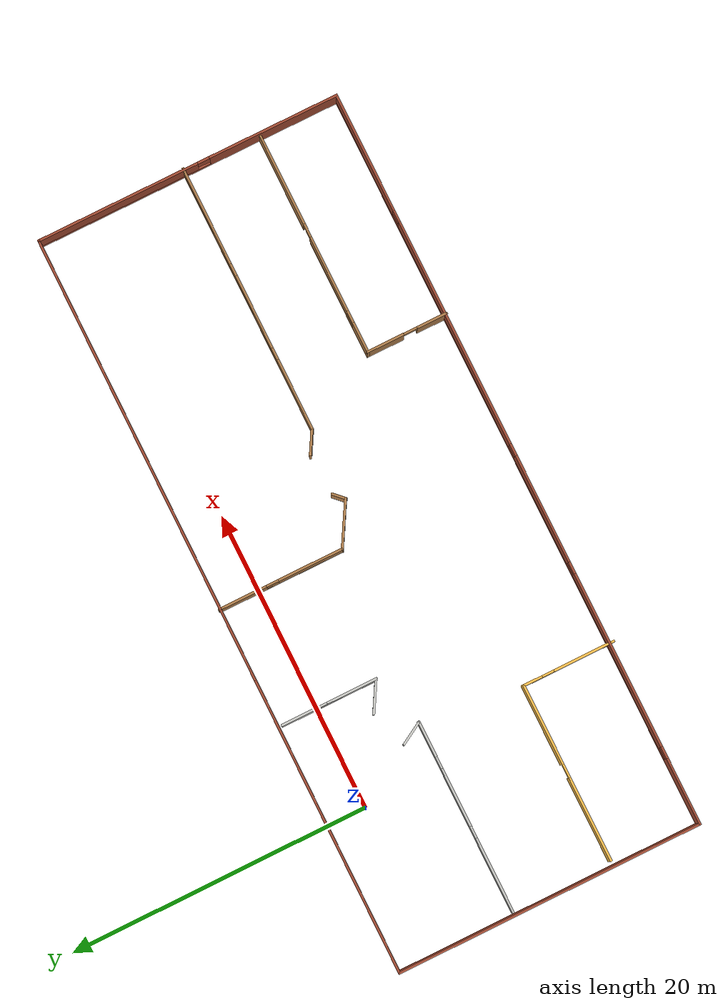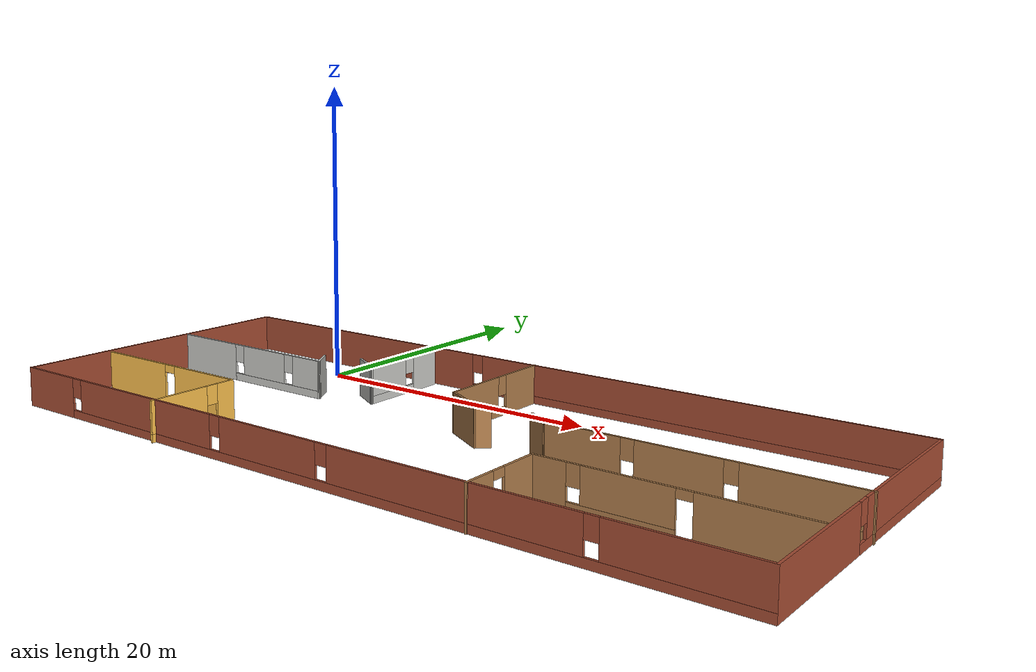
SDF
<?xml version='1.0'?>
<sdf version='1.6'>
  <model name='featured_plan'>
    <pose frame=''>15.1053 -7.69191 0 0 -0 0</pose>
    <link name='Wall_11'>
      <pose frame=''>24.8859 0.103932 0 0 -0 1.5708</pose>
      <visual name='Wall_11_Visual_0'>
        <pose frame=''>-5.85687 0 1.25 0 -0 0</pose>
        <geometry>
          <box>
            <size>8.78627 0.15 2.5</size>
          </box>
        </geometry>
        <material>
          <script>
            <uri>file://media/materials/scripts/gazebo.material</uri>
            <name>Gazebo/Bricks</name>
          </script>
          <ambient>1 1 1 1</ambient>
        </material>
        <meta>
          <layer>0</layer>
        </meta>
      </visual>
      <collision name='Wall_11_Collision_0'>
        <geometry>
          <box>
            <size>8.78627 0.15 2.5</size>
          </box>
        </geometry>
        <pose frame=''>-5.85687 0 1.25 0 -0 0</pose>
      </collision>
      <visual name='Wall_11_Visual_1'>
        <pose frame=''>4.39313 0 0.25 0 -0 0</pose>
        <geometry>
          <box>
            <size>11.7137 0.15 0.5</size>
          </box>
        </geometry>
        <material>
          <script>
            <uri>file://media/materials/scripts/gazebo.material</uri>
            <name>Gazebo/Bricks</name>
          </script>
          <ambient>1 1 1 1</ambient>
        </material>
        <meta>
          <layer>0</layer>
        </meta>
      </visual>
      <collision name='Wall_11_Collision_1'>
        <geometry>
          <box>
            <size>11.7137 0.15 0.5</size>
          </box>
        </geometry>
        <pose frame=''>4.39313 0 0.25 0 -0 0</pose>
      </collision>
      <visual name='Wall_11_Visual_2'>
        <pose frame=''>4.79313 0 1.5 0 -0 0</pose>
        <geometry>
          <box>
            <size>10.9137 0.15 2</size>
          </box>
        </geometry>
        <material>
          <script>
            <uri>file://media/materials/scripts/gazebo.material</uri>
            <name>Gazebo/Bricks</name>
          </script>
          <ambient>1 1 1 1</ambient>
        </material>
        <meta>
          <layer>0</layer>
        </meta>
      </visual>
      <collision name='Wall_11_Collision_2'>
        <geometry>
          <box>
            <size>10.9137 0.15 2</size>
          </box>
        </geometry>
        <pose frame=''>4.79313 0 1.5 0 -0 0</pose>
      </collision>
      <visual name='Wall_11_Visual_3'>
        <pose frame=''>-1.06373 0 1.9 0 -0 0</pose>
        <geometry>
          <box>
            <size>0.8 0.15 1.2</size>
          </box>
        </geometry>
        <material>
          <script>
            <uri>file://media/materials/scripts/gazebo.material</uri>
            <name>Gazebo/Bricks</name>
          </script>
          <ambient>1 1 1 1</ambient>
        </material>
        <meta>
          <layer>0</layer>
        </meta>
      </visual>
      <collision name='Wall_11_Collision_3'>
        <geometry>
          <box>
            <size>0.8 0.15 1.2</size>
          </box>
        </geometry>
        <pose frame=''>-1.06373 0 1.9 0 -0 0</pose>
      </collision>
    </link>
    <link name='Wall_13'>
      <pose frame=''>-8.34671 6.83078 0 0 0 -1.5708</pose>
      <visual name='Wall_13_Visual_0'>
        <pose frame=''>-2.10318 0 1.25 0 -0 0</pose>
        <geometry>
          <box>
            <size>2.29365 0.15 2.5</size>
          </box>
        </geometry>
        <material>
          <script>
            <uri>file://media/materials/scripts/gazebo.material</uri>
            <name>Gazebo/CeilingTiled</name>
          </script>
          <ambient>0.996078 0.47451 0.0196078 1</ambient>
        </material>
        <meta>
          <layer>0</layer>
        </meta>
      </visual>
      <collision name='Wall_13_Collision_0'>
        <geometry>
          <box>
            <size>2.29365 0.15 2.5</size>
          </box>
        </geometry>
        <pose frame=''>-2.10318 0 1.25 0 -0 0</pose>
      </collision>
      <visual name='Wall_13_Visual_1'>
        <pose frame=''>1.14682 0 0.25 0 -0 0</pose>
        <geometry>
          <box>
            <size>4.20635 0.15 0.5</size>
          </box>
        </geometry>
        <material>
          <script>
            <uri>file://media/materials/scripts/gazebo.material</uri>
            <name>Gazebo/CeilingTiled</name>
          </script>
          <ambient>0.996078 0.47451 0.0196078 1</ambient>
        </material>
        <meta>
          <layer>0</layer>
        </meta>
      </visual>
      <collision name='Wall_13_Collision_1'>
        <geometry>
          <box>
            <size>4.20635 0.15 0.5</size>
          </box>
        </geometry>
        <pose frame=''>1.14682 0 0.25 0 -0 0</pose>
      </collision>
      <visual name='Wall_13_Visual_2'>
        <pose frame=''>1.54682 0 1.5 0 -0 0</pose>
        <geometry>
          <box>
            <size>3.40635 0.15 2</size>
          </box>
        </geometry>
        <material>
          <script>
            <uri>file://media/materials/scripts/gazebo.material</uri>
            <name>Gazebo/CeilingTiled</name>
          </script>
          <ambient>0.996078 0.47451 0.0196078 1</ambient>
        </material>
        <meta>
          <layer>0</layer>
        </meta>
      </visual>
      <collision name='Wall_13_Collision_2'>
        <geometry>
          <box>
            <size>3.40635 0.15 2</size>
          </box>
        </geometry>
        <pose frame=''>1.54682 0 1.5 0 -0 0</pose>
      </collision>
      <visual name='Wall_13_Visual_3'>
        <pose frame=''>-0.556354 0 1.9 0 -0 0</pose>
        <geometry>
          <box>
            <size>0.8 0.15 1.2</size>
          </box>
        </geometry>
        <material>
          <script>
            <uri>file://media/materials/scripts/gazebo.material</uri>
            <name>Gazebo/CeilingTiled</name>
          </script>
          <ambient>0.996078 0.47451 0.0196078 1</ambient>
        </material>
        <meta>
          <layer>0</layer>
        </meta>
      </visual>
      <collision name='Wall_13_Collision_3'>
        <geometry>
          <box>
            <size>0.8 0.15 1.2</size>
          </box>
        </geometry>
        <pose frame=''>-0.556354 0 1.9 0 -0 0</pose>
      </collision>
    </link>
    <link name='Wall_14'>
      <collision name='Wall_14_Collision'>
        <geometry>
          <box>
            <size>2.25 0.15 2.5</size>
          </box>
        </geometry>
        <pose frame=''>0 0 1.25 0 -0 0</pose>
      </collision>
      <visual name='Wall_14_Visual'>
        <pose frame=''>0 0 1.25 0 -0 0</pose>
        <geometry>
          <box>
            <size>2.25 0.15 2.5</size>
          </box>
        </geometry>
        <material>
          <script>
            <uri>file://media/materials/scripts/gazebo.material</uri>
            <name>Gazebo/CeilingTiled</name>
          </script>
          <ambient>0.921569 0.807843 0.615686 1</ambient>
        </material>
        <meta>
          <layer>0</layer>
        </meta>
      </visual>
      <pose frame=''>-9.25604 4.18078 0 0 -0 2.61799</pose>
    </link>
    <link name='Wall_16'>
      <pose frame=''>-18.2883 2.47717 0 0 -0 0</pose>
      <visual name='Wall_16_Visual_0'>
        <pose frame=''>-3.96202 0 1.25 0 -0 0</pose>
        <geometry>
          <box>
            <size>5.07596 0.15 2.5</size>
          </box>
        </geometry>
        <material>
          <script>
            <uri>file://media/materials/scripts/gazebo.material</uri>
            <name>Gazebo/CeilingTiled</name>
          </script>
          <ambient>0.996078 0.47451 0.0196078 1</ambient>
        </material>
        <meta>
          <layer>0</layer>
        </meta>
      </visual>
      <collision name='Wall_16_Collision_0'>
        <geometry>
          <box>
            <size>5.07596 0.15 2.5</size>
          </box>
        </geometry>
        <pose frame=''>-3.96202 0 1.25 0 -0 0</pose>
      </collision>
      <visual name='Wall_16_Visual_1'>
        <pose frame=''>2.53798 0 0.25 0 -0 0</pose>
        <geometry>
          <box>
            <size>7.92404 0.15 0.5</size>
          </box>
        </geometry>
        <material>
          <script>
            <uri>file://media/materials/scripts/gazebo.material</uri>
            <name>Gazebo/CeilingTiled</name>
          </script>
          <ambient>0.996078 0.47451 0.0196078 1</ambient>
        </material>
        <meta>
          <layer>0</layer>
        </meta>
      </visual>
      <collision name='Wall_16_Collision_1'>
        <geometry>
          <box>
            <size>7.92404 0.15 0.5</size>
          </box>
        </geometry>
        <pose frame=''>2.53798 0 0.25 0 -0 0</pose>
      </collision>
      <visual name='Wall_16_Visual_2'>
        <pose frame=''>1.32695 0 1.5 0 -0 0</pose>
        <geometry>
          <box>
            <size>3.90198 0.15 2</size>
          </box>
        </geometry>
        <material>
          <script>
            <uri>file://media/materials/scripts/gazebo.material</uri>
            <name>Gazebo/CeilingTiled</name>
          </script>
          <ambient>0.996078 0.47451 0.0196078 1</ambient>
        </material>
        <meta>
          <layer>0</layer>
        </meta>
      </visual>
      <collision name='Wall_16_Collision_2'>
        <geometry>
          <box>
            <size>3.90198 0.15 2</size>
          </box>
        </geometry>
        <pose frame=''>1.32695 0 1.5 0 -0 0</pose>
      </collision>
      <visual name='Wall_16_Visual_3'>
        <pose frame=''>5.28897 0 1.5 0 -0 0</pose>
        <geometry>
          <box>
            <size>2.42206 0.15 2</size>
          </box>
        </geometry>
        <material>
          <script>
            <uri>file://media/materials/scripts/gazebo.material</uri>
            <name>Gazebo/CeilingTiled</name>
          </script>
          <ambient>0.996078 0.47451 0.0196078 1</ambient>
        </material>
        <meta>
          <layer>0</layer>
        </meta>
      </visual>
      <collision name='Wall_16_Collision_3'>
        <geometry>
          <box>
            <size>2.42206 0.15 2</size>
          </box>
        </geometry>
        <pose frame=''>5.28897 0 1.5 0 -0 0</pose>
      </collision>
      <visual name='Wall_16_Visual_4'>
        <pose frame=''>-1.02404 0 1.9 0 -0 0</pose>
        <geometry>
          <box>
            <size>0.8 0.15 1.2</size>
          </box>
        </geometry>
        <material>
          <script>
            <uri>file://media/materials/scripts/gazebo.material</uri>
            <name>Gazebo/CeilingTiled</name>
          </script>
          <ambient>0.996078 0.47451 0.0196078 1</ambient>
        </material>
        <meta>
          <layer>0</layer>
        </meta>
      </visual>
      <collision name='Wall_16_Collision_4'>
        <geometry>
          <box>
            <size>0.8 0.15 1.2</size>
          </box>
        </geometry>
        <pose frame=''>-1.02404 0 1.9 0 -0 0</pose>
      </collision>
      <visual name='Wall_16_Visual_5'>
        <pose frame=''>3.67794 0 1.9 0 -0 0</pose>
        <geometry>
          <box>
            <size>0.8 0.15 1.2</size>
          </box>
        </geometry>
        <material>
          <script>
            <uri>file://media/materials/scripts/gazebo.material</uri>
            <name>Gazebo/CeilingTiled</name>
          </script>
          <ambient>0.996078 0.47451 0.0196078 1</ambient>
        </material>
        <meta>
          <layer>0</layer>
        </meta>
      </visual>
      <collision name='Wall_16_Collision_5'>
        <geometry>
          <box>
            <size>0.8 0.15 1.2</size>
          </box>
        </geometry>
        <pose frame=''>3.67794 0 1.9 0 -0 0</pose>
      </collision>
    </link>
    <link name='Wall_17'>
      <collision name='Wall_17_Collision'>
        <geometry>
          <box>
            <size>1.75 0.15 2.5</size>
          </box>
        </geometry>
        <pose frame=''>0 0 1.25 0 -0 0</pose>
      </collision>
      <visual name='Wall_17_Visual'>
        <pose frame=''>0 0 1.25 0 -0 0</pose>
        <geometry>
          <box>
            <size>1.75 0.15 2.5</size>
          </box>
        </geometry>
        <material>
          <script>
            <uri>file://media/materials/scripts/gazebo.material</uri>
            <name>Gazebo/CeilingTiled</name>
          </script>
          <ambient>0.921569 0.807843 0.615686 1</ambient>
        </material>
        <meta>
          <layer>0</layer>
        </meta>
      </visual>
      <pose frame=''>-12.2633 3.16999 0 0 -0 2.0944</pose>
    </link>
    <link name='Wall_19'>
      <pose frame=''>-18.6246 -4.23311 0 0 -0 0</pose>
      <visual name='Wall_19_Visual_0'>
        <pose frame=''>-3.15969 0 1.25 0 -0 0</pose>
        <geometry>
          <box>
            <size>5.68062 0.15 2.5</size>
          </box>
        </geometry>
        <material>
          <script>
            <uri>file://media/materials/scripts/gazebo.material</uri>
            <name>Gazebo/Grey</name>
          </script>
          <ambient>1 0.764706 0.305882 1</ambient>
        </material>
        <meta>
          <layer>0</layer>
        </meta>
      </visual>
      <collision name='Wall_19_Collision_0'>
        <geometry>
          <box>
            <size>5.68062 0.15 2.5</size>
          </box>
        </geometry>
        <pose frame=''>-3.15969 0 1.25 0 -0 0</pose>
      </collision>
      <visual name='Wall_19_Visual_1'>
        <pose frame=''>3.29031 0 1.25 0 -0 0</pose>
        <geometry>
          <box>
            <size>5.41938 0.15 2.5</size>
          </box>
        </geometry>
        <material>
          <script>
            <uri>file://media/materials/scripts/gazebo.material</uri>
            <name>Gazebo/Grey</name>
          </script>
          <ambient>1 0.764706 0.305882 1</ambient>
        </material>
        <meta>
          <layer>0</layer>
        </meta>
      </visual>
      <collision name='Wall_19_Collision_1'>
        <geometry>
          <box>
            <size>5.41938 0.15 2.5</size>
          </box>
        </geometry>
        <pose frame=''>3.29031 0 1.25 0 -0 0</pose>
      </collision>
      <visual name='Wall_19_Visual_2'>
        <pose frame=''>0.130619 0 2.25 0 -0 0</pose>
        <geometry>
          <box>
            <size>0.9 0.15 0.5</size>
          </box>
        </geometry>
        <material>
          <script>
            <uri>file://media/materials/scripts/gazebo.material</uri>
            <name>Gazebo/Grey</name>
          </script>
          <ambient>1 0.764706 0.305882 1</ambient>
        </material>
        <meta>
          <layer>0</layer>
        </meta>
      </visual>
      <collision name='Wall_19_Collision_2'>
        <geometry>
          <box>
            <size>0.9 0.15 0.5</size>
          </box>
        </geometry>
        <pose frame=''>0.130619 0 2.25 0 -0 0</pose>
      </collision>
    </link>
    <link name='Wall_20'>
      <pose frame=''>-12.6996 -7.28311 0 0 0 -1.5708</pose>
      <visual name='Wall_20_Visual_0'>
        <pose frame=''>-2.46917 0 1.25 0 -0 0</pose>
        <geometry>
          <box>
            <size>1.31165 0.15 2.5</size>
          </box>
        </geometry>
        <material>
          <script>
            <uri>file://media/materials/scripts/gazebo.material</uri>
            <name>Gazebo/Grey</name>
          </script>
          <ambient>1 0.764706 0.305882 1</ambient>
        </material>
        <meta>
          <layer>0</layer>
        </meta>
      </visual>
      <collision name='Wall_20_Collision_0'>
        <geometry>
          <box>
            <size>1.31165 0.15 2.5</size>
          </box>
        </geometry>
        <pose frame=''>-2.46917 0 1.25 0 -0 0</pose>
      </collision>
      <visual name='Wall_20_Visual_1'>
        <pose frame=''>0.655827 0 0.25 0 -0 0</pose>
        <geometry>
          <box>
            <size>4.93835 0.15 0.5</size>
          </box>
        </geometry>
        <material>
          <script>
            <uri>file://media/materials/scripts/gazebo.material</uri>
            <name>Gazebo/Grey</name>
          </script>
          <ambient>1 0.764706 0.305882 1</ambient>
        </material>
        <meta>
          <layer>0</layer>
        </meta>
      </visual>
      <collision name='Wall_20_Collision_1'>
        <geometry>
          <box>
            <size>4.93835 0.15 0.5</size>
          </box>
        </geometry>
        <pose frame=''>0.655827 0 0.25 0 -0 0</pose>
      </collision>
      <visual name='Wall_20_Visual_2'>
        <pose frame=''>1.05583 0 1.5 0 -0 0</pose>
        <geometry>
          <box>
            <size>4.13835 0.15 2</size>
          </box>
        </geometry>
        <material>
          <script>
            <uri>file://media/materials/scripts/gazebo.material</uri>
            <name>Gazebo/Grey</name>
          </script>
          <ambient>1 0.764706 0.305882 1</ambient>
        </material>
        <meta>
          <layer>0</layer>
        </meta>
      </visual>
      <collision name='Wall_20_Collision_2'>
        <geometry>
          <box>
            <size>4.13835 0.15 2</size>
          </box>
        </geometry>
        <pose frame=''>1.05583 0 1.5 0 -0 0</pose>
      </collision>
      <visual name='Wall_20_Visual_3'>
        <pose frame=''>-1.41335 0 1.9 0 -0 0</pose>
        <geometry>
          <box>
            <size>0.8 0.15 1.2</size>
          </box>
        </geometry>
        <material>
          <script>
            <uri>file://media/materials/scripts/gazebo.material</uri>
            <name>Gazebo/Grey</name>
          </script>
          <ambient>1 0.764706 0.305882 1</ambient>
        </material>
        <meta>
          <layer>0</layer>
        </meta>
      </visual>
      <collision name='Wall_20_Collision_3'>
        <geometry>
          <box>
            <size>0.8 0.15 1.2</size>
          </box>
        </geometry>
        <pose frame=''>-1.41335 0 1.9 0 -0 0</pose>
      </collision>
    </link>
    <link name='Wall_22'>
      <pose frame=''>9.82014 -7.45006 0 0 -0 1.5708</pose>
      <visual name='Wall_22_Visual_0'>
        <pose frame=''>-1.71001 0 1.25 0 -0 0</pose>
        <geometry>
          <box>
            <size>2.07998 0.15 2.5</size>
          </box>
        </geometry>
        <material>
          <script>
            <uri>file://media/materials/scripts/gazebo.material</uri>
            <name>Gazebo/Wood</name>
          </script>
          <ambient>1 1 1 1</ambient>
        </material>
        <meta>
          <layer>0</layer>
        </meta>
      </visual>
      <collision name='Wall_22_Collision_0'>
        <geometry>
          <box>
            <size>2.07998 0.15 2.5</size>
          </box>
        </geometry>
        <pose frame=''>-1.71001 0 1.25 0 -0 0</pose>
      </collision>
      <visual name='Wall_22_Visual_1'>
        <pose frame=''>1.48999 0 1.25 0 -0 0</pose>
        <geometry>
          <box>
            <size>2.52002 0.15 2.5</size>
          </box>
        </geometry>
        <material>
          <script>
            <uri>file://media/materials/scripts/gazebo.material</uri>
            <name>Gazebo/Wood</name>
          </script>
          <ambient>1 1 1 1</ambient>
        </material>
        <meta>
          <layer>0</layer>
        </meta>
      </visual>
      <collision name='Wall_22_Collision_1'>
        <geometry>
          <box>
            <size>2.52002 0.15 2.5</size>
          </box>
        </geometry>
        <pose frame=''>1.48999 0 1.25 0 -0 0</pose>
      </collision>
      <visual name='Wall_22_Visual_2'>
        <pose frame=''>-0.220019 0 2.25 0 -0 0</pose>
        <geometry>
          <box>
            <size>0.9 0.15 0.5</size>
          </box>
        </geometry>
        <material>
          <script>
            <uri>file://media/materials/scripts/gazebo.material</uri>
            <name>Gazebo/Wood</name>
          </script>
          <ambient>1 1 1 1</ambient>
        </material>
        <meta>
          <layer>0</layer>
        </meta>
      </visual>
      <collision name='Wall_22_Collision_2'>
        <geometry>
          <box>
            <size>0.9 0.15 0.5</size>
          </box>
        </geometry>
        <pose frame=''>-0.220019 0 2.25 0 -0 0</pose>
      </collision>
    </link>
    <link name='Wall_23'>
      <pose frame=''>17.2451 -4.77506 0 0 -0 0</pose>
      <visual name='Wall_23_Visual_0'>
        <pose frame=''>-6.45717 0 1.25 0 -0 0</pose>
        <geometry>
          <box>
            <size>2.08567 0.15 2.5</size>
          </box>
        </geometry>
        <material>
          <script>
            <uri>file://media/materials/scripts/gazebo.material</uri>
            <name>Gazebo/Wood</name>
          </script>
          <ambient>1 1 1 1</ambient>
        </material>
        <meta>
          <layer>0</layer>
        </meta>
      </visual>
      <collision name='Wall_23_Collision_0'>
        <geometry>
          <box>
            <size>2.08567 0.15 2.5</size>
          </box>
        </geometry>
        <pose frame=''>-6.45717 0 1.25 0 -0 0</pose>
      </collision>
      <visual name='Wall_23_Visual_1'>
        <pose frame=''>4.43597 0 1.25 0 -0 0</pose>
        <geometry>
          <box>
            <size>6.12806 0.15 2.5</size>
          </box>
        </geometry>
        <material>
          <script>
            <uri>file://media/materials/scripts/gazebo.material</uri>
            <name>Gazebo/Wood</name>
          </script>
          <ambient>1 1 1 1</ambient>
        </material>
        <meta>
          <layer>0</layer>
        </meta>
      </visual>
      <collision name='Wall_23_Collision_1'>
        <geometry>
          <box>
            <size>6.12806 0.15 2.5</size>
          </box>
        </geometry>
        <pose frame=''>4.43597 0 1.25 0 -0 0</pose>
      </collision>
      <visual name='Wall_23_Visual_2'>
        <pose frame=''>-2.4712 0 0.25 0 -0 0</pose>
        <geometry>
          <box>
            <size>5.88627 0.15 0.5</size>
          </box>
        </geometry>
        <material>
          <script>
            <uri>file://media/materials/scripts/gazebo.material</uri>
            <name>Gazebo/Wood</name>
          </script>
          <ambient>1 1 1 1</ambient>
        </material>
        <meta>
          <layer>0</layer>
        </meta>
      </visual>
      <collision name='Wall_23_Collision_2'>
        <geometry>
          <box>
            <size>5.88627 0.15 0.5</size>
          </box>
        </geometry>
        <pose frame=''>-2.4712 0 0.25 0 -0 0</pose>
      </collision>
      <visual name='Wall_23_Visual_3'>
        <pose frame=''>-2.0712 0 1.5 0 -0 0</pose>
        <geometry>
          <box>
            <size>5.08627 0.15 2</size>
          </box>
        </geometry>
        <material>
          <script>
            <uri>file://media/materials/scripts/gazebo.material</uri>
            <name>Gazebo/Wood</name>
          </script>
          <ambient>1 1 1 1</ambient>
        </material>
        <meta>
          <layer>0</layer>
        </meta>
      </visual>
      <collision name='Wall_23_Collision_3'>
        <geometry>
          <box>
            <size>5.08627 0.15 2</size>
          </box>
        </geometry>
        <pose frame=''>-2.0712 0 1.5 0 -0 0</pose>
      </collision>
      <visual name='Wall_23_Visual_4'>
        <pose frame=''>-5.01433 0 1.9 0 -0 0</pose>
        <geometry>
          <box>
            <size>0.8 0.15 1.2</size>
          </box>
        </geometry>
        <material>
          <script>
            <uri>file://media/materials/scripts/gazebo.material</uri>
            <name>Gazebo/Wood</name>
          </script>
          <ambient>1 1 1 1</ambient>
        </material>
        <meta>
          <layer>0</layer>
        </meta>
      </visual>
      <collision name='Wall_23_Collision_4'>
        <geometry>
          <box>
            <size>0.8 0.15 1.2</size>
          </box>
        </geometry>
        <pose frame=''>-5.01433 0 1.9 0 -0 0</pose>
      </collision>
      <visual name='Wall_23_Visual_5'>
        <pose frame=''>0.921936 0 2.25 0 -0 0</pose>
        <geometry>
          <box>
            <size>0.9 0.15 0.5</size>
          </box>
        </geometry>
        <material>
          <script>
            <uri>file://media/materials/scripts/gazebo.material</uri>
            <name>Gazebo/Wood</name>
          </script>
          <ambient>1 1 1 1</ambient>
        </material>
        <meta>
          <layer>0</layer>
        </meta>
      </visual>
      <collision name='Wall_23_Collision_5'>
        <geometry>
          <box>
            <size>0.9 0.15 0.5</size>
          </box>
        </geometry>
        <pose frame=''>0.921936 0 2.25 0 -0 0</pose>
      </collision>
    </link>
    <link name='Wall_25'>
      <pose frame=''>-0.32711 6.15811 0 0 0 -1.5708</pose>
      <visual name='Wall_25_Visual_0'>
        <pose frame=''>-2.61218 0 1.25 0 -0 0</pose>
        <geometry>
          <box>
            <size>3.27564 0.15 2.5</size>
          </box>
        </geometry>
        <material>
          <script>
            <uri>file://media/materials/scripts/gazebo.material</uri>
            <name>Gazebo/Wood</name>
          </script>
          <ambient>1 1 1 1</ambient>
        </material>
        <meta>
          <layer>0</layer>
        </meta>
      </visual>
      <collision name='Wall_25_Collision_0'>
        <geometry>
          <box>
            <size>3.27564 0.15 2.5</size>
          </box>
        </geometry>
        <pose frame=''>-2.61218 0 1.25 0 -0 0</pose>
      </collision>
      <visual name='Wall_25_Visual_1'>
        <pose frame=''>1.63782 0 0.25 0 -0 0</pose>
        <geometry>
          <box>
            <size>5.22436 0.15 0.5</size>
          </box>
        </geometry>
        <material>
          <script>
            <uri>file://media/materials/scripts/gazebo.material</uri>
            <name>Gazebo/Wood</name>
          </script>
          <ambient>1 1 1 1</ambient>
        </material>
        <meta>
          <layer>0</layer>
        </meta>
      </visual>
      <collision name='Wall_25_Collision_1'>
        <geometry>
          <box>
            <size>5.22436 0.15 0.5</size>
          </box>
        </geometry>
        <pose frame=''>1.63782 0 0.25 0 -0 0</pose>
      </collision>
      <visual name='Wall_25_Visual_2'>
        <pose frame=''>2.03782 0 1.5 0 -0 0</pose>
        <geometry>
          <box>
            <size>4.42436 0.15 2</size>
          </box>
        </geometry>
        <material>
          <script>
            <uri>file://media/materials/scripts/gazebo.material</uri>
            <name>Gazebo/Wood</name>
          </script>
          <ambient>1 1 1 1</ambient>
        </material>
        <meta>
          <layer>0</layer>
        </meta>
      </visual>
      <collision name='Wall_25_Collision_2'>
        <geometry>
          <box>
            <size>4.42436 0.15 2</size>
          </box>
        </geometry>
        <pose frame=''>2.03782 0 1.5 0 -0 0</pose>
      </collision>
      <visual name='Wall_25_Visual_3'>
        <pose frame=''>-0.574362 0 1.9 0 -0 0</pose>
        <geometry>
          <box>
            <size>0.8 0.15 1.2</size>
          </box>
        </geometry>
        <material>
          <script>
            <uri>file://media/materials/scripts/gazebo.material</uri>
            <name>Gazebo/Wood</name>
          </script>
          <ambient>1 1 1 1</ambient>
        </material>
        <meta>
          <layer>0</layer>
        </meta>
      </visual>
      <collision name='Wall_25_Collision_3'>
        <geometry>
          <box>
            <size>0.8 0.15 1.2</size>
          </box>
        </geometry>
        <pose frame=''>-0.574362 0 1.9 0 -0 0</pose>
      </collision>
    </link>
    <link name='Wall_26'>
      <collision name='Wall_26_Collision'>
        <geometry>
          <box>
            <size>3.25 0.15 2.5</size>
          </box>
        </geometry>
        <pose frame=''>0 0 1.25 0 -0 0</pose>
      </collision>
      <visual name='Wall_26_Visual'>
        <pose frame=''>0 0 1.25 0 -0 0</pose>
        <geometry>
          <box>
            <size>3.25 0.15 2.5</size>
          </box>
        </geometry>
        <material>
          <script>
            <uri>file://media/materials/scripts/gazebo.material</uri>
            <name>Gazebo/Wood</name>
          </script>
          <ambient>1 1 1 1</ambient>
        </material>
        <meta>
          <layer>0</layer>
        </meta>
      </visual>
      <pose frame=''>1.01523 1.20811 0 0 0 -0.523599</pose>
    </link>
    <link name='Wall_27'>
      <collision name='Wall_27_Collision'>
        <geometry>
          <box>
            <size>1 0.15 2.5</size>
          </box>
        </geometry>
        <pose frame=''>0 0 1.25 0 -0 0</pose>
      </collision>
      <visual name='Wall_27_Visual'>
        <pose frame=''>0 0 1.25 0 -0 0</pose>
        <geometry>
          <box>
            <size>1 0.15 2.5</size>
          </box>
        </geometry>
        <material>
          <script>
            <uri>file://media/materials/scripts/gazebo.material</uri>
            <name>Gazebo/Wood</name>
          </script>
          <ambient>1 1 1 1</ambient>
        </material>
        <meta>
          <layer>0</layer>
        </meta>
      </visual>
      <pose frame=''>2.65809 0.733629 0 0 -0 0.785398</pose>
    </link>
    <link name='Wall_29'>
      <collision name='Wall_29_Collision'>
        <geometry>
          <box>
            <size>1.75 0.15 2.5</size>
          </box>
        </geometry>
        <pose frame=''>0 0 1.25 0 -0 0</pose>
      </collision>
      <visual name='Wall_29_Visual'>
        <pose frame=''>0 0 1.25 0 -0 0</pose>
        <geometry>
          <box>
            <size>1.75 0.15 2.5</size>
          </box>
        </geometry>
        <material>
          <script>
            <uri>file://media/materials/scripts/gazebo.material</uri>
            <name>Gazebo/Wood</name>
          </script>
          <ambient>1 1 1 1</ambient>
        </material>
        <meta>
          <layer>0</layer>
        </meta>
      </visual>
      <pose frame=''>6.42133 0.767848 0 0 0 -0.523599</pose>
    </link>
    <link name='Wall_3'>
      <pose frame=''>-0.039147 10.2789 0 0 -0 0</pose>
      <visual name='Wall_3_Visual_0'>
        <pose frame=''>-15.0756 0 1.25 0 -0 0</pose>
        <geometry>
          <box>
            <size>19.8488 0.15 2.5</size>
          </box>
        </geometry>
        <material>
          <script>
            <uri>file://media/materials/scripts/gazebo.material</uri>
            <name>Gazebo/Bricks</name>
          </script>
          <ambient>1 1 1 1</ambient>
        </material>
        <meta>
          <layer>0</layer>
        </meta>
      </visual>
      <collision name='Wall_3_Collision_0'>
        <geometry>
          <box>
            <size>19.8488 0.15 2.5</size>
          </box>
        </geometry>
        <pose frame=''>-15.0756 0 1.25 0 -0 0</pose>
      </collision>
      <visual name='Wall_3_Visual_1'>
        <pose frame=''>9.92438 0 0.25 0 -0 0</pose>
        <geometry>
          <box>
            <size>30.1512 0.15 0.5</size>
          </box>
        </geometry>
        <material>
          <script>
            <uri>file://media/materials/scripts/gazebo.material</uri>
            <name>Gazebo/Bricks</name>
          </script>
          <ambient>1 1 1 1</ambient>
        </material>
        <meta>
          <layer>0</layer>
        </meta>
      </visual>
      <collision name='Wall_3_Collision_1'>
        <geometry>
          <box>
            <size>30.1512 0.15 0.5</size>
          </box>
        </geometry>
        <pose frame=''>9.92438 0 0.25 0 -0 0</pose>
      </collision>
      <visual name='Wall_3_Visual_2'>
        <pose frame=''>10.3244 0 1.5 0 -0 0</pose>
        <geometry>
          <box>
            <size>29.3512 0.15 2</size>
          </box>
        </geometry>
        <material>
          <script>
            <uri>file://media/materials/scripts/gazebo.material</uri>
            <name>Gazebo/Bricks</name>
          </script>
          <ambient>1 1 1 1</ambient>
        </material>
        <meta>
          <layer>0</layer>
        </meta>
      </visual>
      <collision name='Wall_3_Collision_2'>
        <geometry>
          <box>
            <size>29.3512 0.15 2</size>
          </box>
        </geometry>
        <pose frame=''>10.3244 0 1.5 0 -0 0</pose>
      </collision>
      <visual name='Wall_3_Visual_3'>
        <pose frame=''>-4.75124 0 1.9 0 -0 0</pose>
        <geometry>
          <box>
            <size>0.8 0.15 1.2</size>
          </box>
        </geometry>
        <material>
          <script>
            <uri>file://media/materials/scripts/gazebo.material</uri>
            <name>Gazebo/Bricks</name>
          </script>
          <ambient>1 1 1 1</ambient>
        </material>
        <meta>
          <layer>0</layer>
        </meta>
      </visual>
      <collision name='Wall_3_Collision_3'>
        <geometry>
          <box>
            <size>0.8 0.15 1.2</size>
          </box>
        </geometry>
        <pose frame=''>-4.75124 0 1.9 0 -0 0</pose>
      </collision>
    </link>
    <link name='Wall_30'>
      <pose frame=''>16.0391 0.367848 0 0 -0 0</pose>
      <visual name='Wall_30_Visual_0'>
        <pose frame=''>-6.60417 0 1.25 0 -0 0</pose>
        <geometry>
          <box>
            <size>4.79166 0.15 2.5</size>
          </box>
        </geometry>
        <material>
          <script>
            <uri>file://media/materials/scripts/gazebo.material</uri>
            <name>Gazebo/Wood</name>
          </script>
          <ambient>1 1 1 1</ambient>
        </material>
        <meta>
          <layer>0</layer>
        </meta>
      </visual>
      <collision name='Wall_30_Collision_0'>
        <geometry>
          <box>
            <size>4.79166 0.15 2.5</size>
          </box>
        </geometry>
        <pose frame=''>-6.60417 0 1.25 0 -0 0</pose>
      </collision>
      <visual name='Wall_30_Visual_1'>
        <pose frame=''>2.39583 0 0.25 0 -0 0</pose>
        <geometry>
          <box>
            <size>13.2083 0.15 0.5</size>
          </box>
        </geometry>
        <material>
          <script>
            <uri>file://media/materials/scripts/gazebo.material</uri>
            <name>Gazebo/Wood</name>
          </script>
          <ambient>1 1 1 1</ambient>
        </material>
        <meta>
          <layer>0</layer>
        </meta>
      </visual>
      <collision name='Wall_30_Collision_1'>
        <geometry>
          <box>
            <size>13.2083 0.15 0.5</size>
          </box>
        </geometry>
        <pose frame=''>2.39583 0 0.25 0 -0 0</pose>
      </collision>
      <visual name='Wall_30_Visual_2'>
        <pose frame=''>-0.922037 0 1.5 0 -0 0</pose>
        <geometry>
          <box>
            <size>4.9726 0.15 2</size>
          </box>
        </geometry>
        <material>
          <script>
            <uri>file://media/materials/scripts/gazebo.material</uri>
            <name>Gazebo/Wood</name>
          </script>
          <ambient>1 1 1 1</ambient>
        </material>
        <meta>
          <layer>0</layer>
        </meta>
      </visual>
      <collision name='Wall_30_Collision_2'>
        <geometry>
          <box>
            <size>4.9726 0.15 2</size>
          </box>
        </geometry>
        <pose frame=''>-0.922037 0 1.5 0 -0 0</pose>
      </collision>
      <visual name='Wall_30_Visual_3'>
        <pose frame=''>5.68213 0 1.5 0 -0 0</pose>
        <geometry>
          <box>
            <size>6.63574 0.15 2</size>
          </box>
        </geometry>
        <material>
          <script>
            <uri>file://media/materials/scripts/gazebo.material</uri>
            <name>Gazebo/Wood</name>
          </script>
          <ambient>1 1 1 1</ambient>
        </material>
        <meta>
          <layer>0</layer>
        </meta>
      </visual>
      <collision name='Wall_30_Collision_3'>
        <geometry>
          <box>
            <size>6.63574 0.15 2</size>
          </box>
        </geometry>
        <pose frame=''>5.68213 0 1.5 0 -0 0</pose>
      </collision>
      <visual name='Wall_30_Visual_4'>
        <pose frame=''>-3.80834 0 1.9 0 -0 0</pose>
        <geometry>
          <box>
            <size>0.8 0.15 1.2</size>
          </box>
        </geometry>
        <material>
          <script>
            <uri>file://media/materials/scripts/gazebo.material</uri>
            <name>Gazebo/Wood</name>
          </script>
          <ambient>1 1 1 1</ambient>
        </material>
        <meta>
          <layer>0</layer>
        </meta>
      </visual>
      <collision name='Wall_30_Collision_4'>
        <geometry>
          <box>
            <size>0.8 0.15 1.2</size>
          </box>
        </geometry>
        <pose frame=''>-3.80834 0 1.9 0 -0 0</pose>
      </collision>
      <visual name='Wall_30_Visual_5'>
        <pose frame=''>1.96426 0 1.9 0 -0 0</pose>
        <geometry>
          <box>
            <size>0.8 0.15 1.2</size>
          </box>
        </geometry>
        <material>
          <script>
            <uri>file://media/materials/scripts/gazebo.material</uri>
            <name>Gazebo/Wood</name>
          </script>
          <ambient>1 1 1 1</ambient>
        </material>
        <meta>
          <layer>0</layer>
        </meta>
      </visual>
      <collision name='Wall_30_Collision_5'>
        <geometry>
          <box>
            <size>0.8 0.15 1.2</size>
          </box>
        </geometry>
        <pose frame=''>1.96426 0 1.9 0 -0 0</pose>
      </collision>
    </link>
    <link name='Wall_5'>
      <collision name='Wall_5_Collision'>
        <geometry>
          <box>
            <size>20.5 0.15 2.5</size>
          </box>
        </geometry>
        <pose frame=''>0 0 1.25 0 -0 0</pose>
      </collision>
      <visual name='Wall_5_Visual'>
        <pose frame=''>0 0 1.25 0 -0 0</pose>
        <geometry>
          <box>
            <size>20.5 0.15 2.5</size>
          </box>
        </geometry>
        <material>
          <script>
            <uri>file://media/materials/scripts/gazebo.material</uri>
            <name>Gazebo/Bricks</name>
          </script>
          <ambient>1 1 1 1</ambient>
        </material>
        <meta>
          <layer>0</layer>
        </meta>
      </visual>
      <pose frame=''>-24.9641 0.103932 0 0 0 -1.5708</pose>
    </link>
    <link name='Wall_8'>
      <pose frame=''>-0.039147 -10.0711 0 0 -0 0</pose>
      <visual name='Wall_8_Visual_0'>
        <pose frame=''>-22.7457 0 1.25 0 -0 0</pose>
        <geometry>
          <box>
            <size>4.50853 0.15 2.5</size>
          </box>
        </geometry>
        <material>
          <script>
            <uri>file://media/materials/scripts/gazebo.material</uri>
            <name>Gazebo/Bricks</name>
          </script>
          <ambient>1 1 1 1</ambient>
        </material>
        <meta>
          <layer>0</layer>
        </meta>
      </visual>
      <collision name='Wall_8_Collision_0'>
        <geometry>
          <box>
            <size>4.50853 0.15 2.5</size>
          </box>
        </geometry>
        <pose frame=''>-22.7457 0 1.25 0 -0 0</pose>
      </collision>
      <visual name='Wall_8_Visual_1'>
        <pose frame=''>2.25426 0 0.25 0 -0 0</pose>
        <geometry>
          <box>
            <size>45.4915 0.15 0.5</size>
          </box>
        </geometry>
        <material>
          <script>
            <uri>file://media/materials/scripts/gazebo.material</uri>
            <name>Gazebo/Bricks</name>
          </script>
          <ambient>1 1 1 1</ambient>
        </material>
        <meta>
          <layer>0</layer>
        </meta>
      </visual>
      <collision name='Wall_8_Collision_1'>
        <geometry>
          <box>
            <size>45.4915 0.15 0.5</size>
          </box>
        </geometry>
        <pose frame=''>2.25426 0 0.25 0 -0 0</pose>
      </collision>
      <visual name='Wall_8_Visual_2'>
        <pose frame=''>-13.8125 0 1.5 0 -0 0</pose>
        <geometry>
          <box>
            <size>11.7579 0.15 2</size>
          </box>
        </geometry>
        <material>
          <script>
            <uri>file://media/materials/scripts/gazebo.material</uri>
            <name>Gazebo/Bricks</name>
          </script>
          <ambient>1 1 1 1</ambient>
        </material>
        <meta>
          <layer>0</layer>
        </meta>
      </visual>
      <collision name='Wall_8_Collision_2'>
        <geometry>
          <box>
            <size>11.7579 0.15 2</size>
          </box>
        </geometry>
        <pose frame=''>-13.8125 0 1.5 0 -0 0</pose>
      </collision>
      <visual name='Wall_8_Visual_3'>
        <pose frame=''>-3.50159 0 1.5 0 -0 0</pose>
        <geometry>
          <box>
            <size>7.26392 0.15 2</size>
          </box>
        </geometry>
        <material>
          <script>
            <uri>file://media/materials/scripts/gazebo.material</uri>
            <name>Gazebo/Bricks</name>
          </script>
          <ambient>1 1 1 1</ambient>
        </material>
        <meta>
          <layer>0</layer>
        </meta>
      </visual>
      <collision name='Wall_8_Collision_3'>
        <geometry>
          <box>
            <size>7.26392 0.15 2</size>
          </box>
        </geometry>
        <pose frame=''>-3.50159 0 1.5 0 -0 0</pose>
      </collision>
      <visual name='Wall_8_Visual_4'>
        <pose frame=''>8.54997 0 1.5 0 -0 0</pose>
        <geometry>
          <box>
            <size>15.2392 0.15 2</size>
          </box>
        </geometry>
        <material>
          <script>
            <uri>file://media/materials/scripts/gazebo.material</uri>
            <name>Gazebo/Bricks</name>
          </script>
          <ambient>1 1 1 1</ambient>
        </material>
        <meta>
          <layer>0</layer>
        </meta>
      </visual>
      <collision name='Wall_8_Collision_4'>
        <geometry>
          <box>
            <size>15.2392 0.15 2</size>
          </box>
        </geometry>
        <pose frame=''>8.54997 0 1.5 0 -0 0</pose>
      </collision>
      <visual name='Wall_8_Visual_5'>
        <pose frame=''>20.9848 0 1.5 0 -0 0</pose>
        <geometry>
          <box>
            <size>8.03043 0.15 2</size>
          </box>
        </geometry>
        <material>
          <script>
            <uri>file://media/materials/scripts/gazebo.material</uri>
            <name>Gazebo/Bricks</name>
          </script>
          <ambient>1 1 1 1</ambient>
        </material>
        <meta>
          <layer>0</layer>
        </meta>
      </visual>
      <collision name='Wall_8_Collision_5'>
        <geometry>
          <box>
            <size>8.03043 0.15 2</size>
          </box>
        </geometry>
        <pose frame=''>20.9848 0 1.5 0 -0 0</pose>
      </collision>
      <visual name='Wall_8_Visual_6'>
        <pose frame=''>-20.0915 0 1.9 0 -0 0</pose>
        <geometry>
          <box>
            <size>0.8 0.15 1.2</size>
          </box>
        </geometry>
        <material>
          <script>
            <uri>file://media/materials/scripts/gazebo.material</uri>
            <name>Gazebo/Bricks</name>
          </script>
          <ambient>1 1 1 1</ambient>
        </material>
        <meta>
          <layer>0</layer>
        </meta>
      </visual>
      <collision name='Wall_8_Collision_6'>
        <geometry>
          <box>
            <size>0.8 0.15 1.2</size>
          </box>
        </geometry>
        <pose frame=''>-20.0915 0 1.9 0 -0 0</pose>
      </collision>
      <visual name='Wall_8_Visual_7'>
        <pose frame=''>-7.53355 0 1.9 0 -0 0</pose>
        <geometry>
          <box>
            <size>0.8 0.15 1.2</size>
          </box>
        </geometry>
        <material>
          <script>
            <uri>file://media/materials/scripts/gazebo.material</uri>
            <name>Gazebo/Bricks</name>
          </script>
          <ambient>1 1 1 1</ambient>
        </material>
        <meta>
          <layer>0</layer>
        </meta>
      </visual>
      <collision name='Wall_8_Collision_7'>
        <geometry>
          <box>
            <size>0.8 0.15 1.2</size>
          </box>
        </geometry>
        <pose frame=''>-7.53355 0 1.9 0 -0 0</pose>
      </collision>
      <visual name='Wall_8_Visual_8'>
        <pose frame=''>0.530364 0 1.9 0 -0 0</pose>
        <geometry>
          <box>
            <size>0.8 0.15 1.2</size>
          </box>
        </geometry>
        <material>
          <script>
            <uri>file://media/materials/scripts/gazebo.material</uri>
            <name>Gazebo/Bricks</name>
          </script>
          <ambient>1 1 1 1</ambient>
        </material>
        <meta>
          <layer>0</layer>
        </meta>
      </visual>
      <collision name='Wall_8_Collision_8'>
        <geometry>
          <box>
            <size>0.8 0.15 1.2</size>
          </box>
        </geometry>
        <pose frame=''>0.530364 0 1.9 0 -0 0</pose>
      </collision>
      <visual name='Wall_8_Visual_9'>
        <pose frame=''>16.5696 0 1.9 0 -0 0</pose>
        <geometry>
          <box>
            <size>0.8 0.15 1.2</size>
          </box>
        </geometry>
        <material>
          <script>
            <uri>file://media/materials/scripts/gazebo.material</uri>
            <name>Gazebo/Bricks</name>
          </script>
          <ambient>1 1 1 1</ambient>
        </material>
        <meta>
          <layer>0</layer>
        </meta>
      </visual>
      <collision name='Wall_8_Collision_9'>
        <geometry>
          <box>
            <size>0.8 0.15 1.2</size>
          </box>
        </geometry>
        <pose frame=''>16.5696 0 1.9 0 -0 0</pose>
      </collision>
    </link>
    <static>1</static>
  </model>
</sdf>
